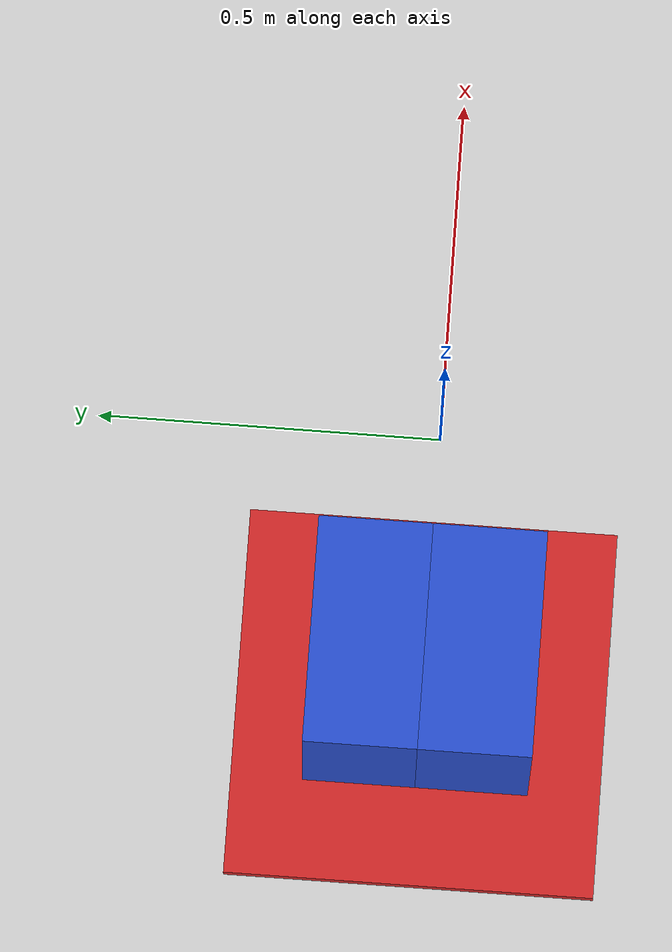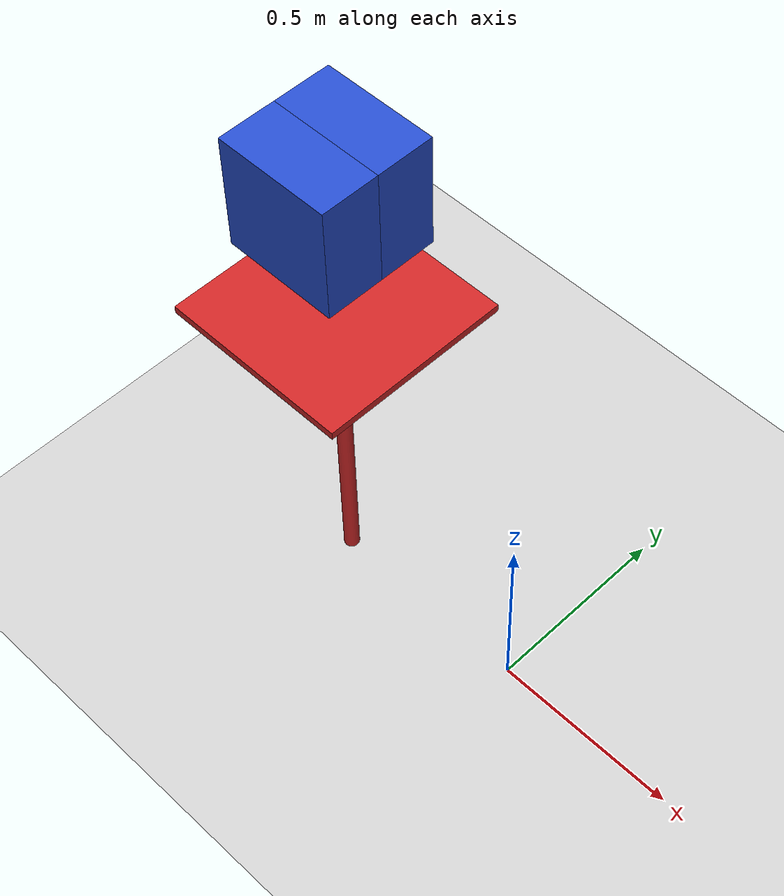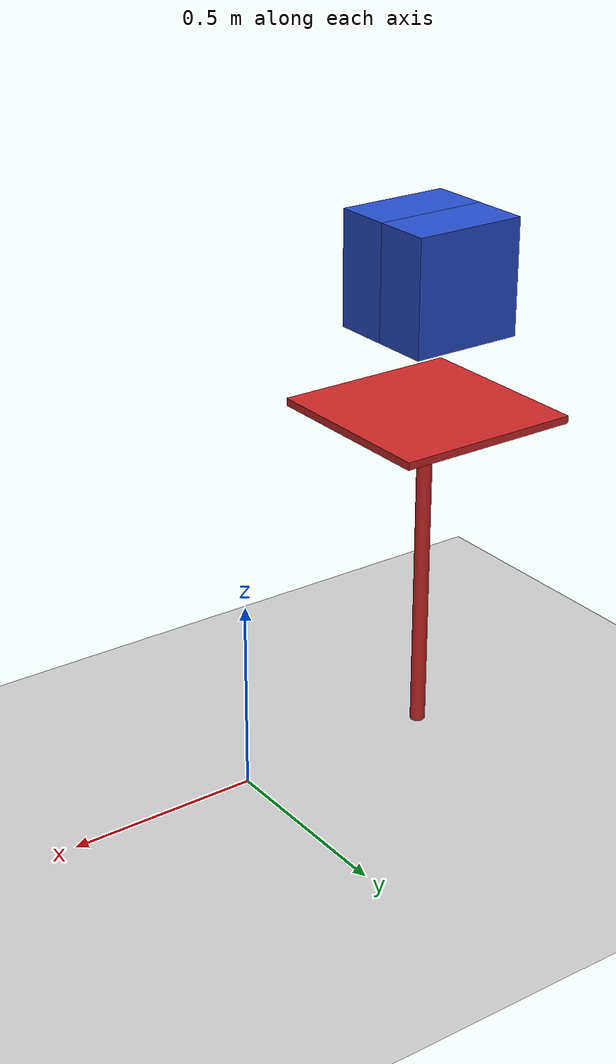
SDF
<?xml version="1.0"?>
<sdf version="1.5">
  <world name="default">
    <light name='sun' type='directional'>
      <cast_shadows>1</cast_shadows>
      <pose>0 0 10 0 -0 0</pose>
      <diffuse>0.8 0.8 0.8 1</diffuse>
      <specular>0.1 0.1 0.1 1</specular>
      <attenuation>
        <range>1000</range>
        <constant>0.9</constant>
        <linear>0.01</linear>
        <quadratic>0.001</quadratic>
      </attenuation>
      <direction>-0.5 0.5 -1</direction>
    </light>
    <model name='ground_plane'>
      <static>1</static>
      <link name='link'>
        <collision name='collision'>
          <geometry>
            <plane>
              <normal>0 0 1</normal>
              <size>100 100</size>
            </plane>
          </geometry>
          <surface>
            <friction>
              <ode>
                <mu>100</mu>
                <mu2>50</mu2>
              </ode>
            </friction>
            <contact>
              <ode/>
            </contact>
            <bounce/>
          </surface>
          <max_contacts>10</max_contacts>
        </collision>
        <visual name='visual'>
          <cast_shadows>0</cast_shadows>
          <geometry>
            <plane>
              <normal>0 0 1</normal>
              <size>100 100</size>
            </plane>
          </geometry>
          <material>
            <script>
              <uri>file://media/materials/scripts/gazebo.material</uri>
              <name>Gazebo/Grey</name>
            </script>
          </material>
        </visual>
        <velocity_decay>
          <linear>0</linear>
          <angular>0</angular>
        </velocity_decay>
        <self_collide>0</self_collide>
        <kinematic>0</kinematic>
        <gravity>1</gravity>
      </link>
    </model>
    <physics type='ode'>
      <max_step_size>0.001</max_step_size>
      <real_time_factor>1</real_time_factor>
      <real_time_update_rate>1000</real_time_update_rate>
      <gravity>0 0 -9.81</gravity>
    </physics>
    <scene>
      <ambient>0.4 0.4 0.4 1</ambient>
      <background>0.7 0.7 0.7 1</background>
      <shadows>1</shadows>
    </scene>

    <model name="Table">
      <pose>-0.55 0 0.89 0 0 0</pose>
      <static>true</static>

      <link name="boardLink">
	<pose>0 0 0 0 0 0 </pose>
        <collision name="boardCollision">
          <geometry>
            <box>
              <size>0.5 0.5 0.02</size>
            </box>
          </geometry>
          <surface>
            <friction>
              <ode>
                <mu>0.9</mu>
                <mu2>0.9</mu2>
              </ode>
            </friction>
            <contact>
              <ode/>
            </contact>
            <bounce/>
          </surface>
        </collision>
        <visual name="boardVisual">
          <geometry>
            <box>
              <size>0.5 0.5 0.02</size>
            </box>
          </geometry>
          <material>
            <script>
              <name>Gazebo/Red</name>
              <uri>file://media/materials/scripts/gazebo.material</uri>
            </script>
          </material>
        </visual>
      </link>

      <link name="pillarLink">
	<pose>0 0 -0.45 0 0 0 </pose>
        <collision name="pillarCollision">
          <geometry>
            <cylinder>
              <radius>0.02</radius>
              <length>0.9</length>
            </cylinder>
          </geometry>
          <surface>
            <friction>
              <ode>
                <mu>0</mu>
                <mu2>0</mu2>
              </ode>
            </friction>
            <contact>
              <ode/>
            </contact>
            <bounce/>
          </surface>
        </collision>
        <visual name="pillarVisual">
          <geometry>
            <cylinder>
              <radius>0.02</radius>
              <length>0.9</length>
            </cylinder>
          </geometry>
          <material>
            <script>
              <name>Gazebo/Red</name>
              <uri>file://media/materials/scripts/gazebo.material</uri>
            </script>
          </material>
        </visual>
      </link>
    </model>

    <model name="ObjectBox">
      <pose>-0.55 0 1.25 0 0 0</pose>
      <static>false</static>
      <link name="obLink">
        <inertial>
          <mass>1</mass>
          <inertia>
            <ixx>0.166667</ixx>
            <ixy>0</ixy>
            <ixz>0</ixz>
            <iyy>0.166667</iyy>
            <iyz>0</iyz>
            <izz>0.166667</izz>
          </inertia>
        </inertial>

        <collision name="obLeftCollision">
         <pose>0 0.075 0 0 0 0</pose>
          <geometry>
            <box>
              <size>0.3 0.15 0.3</size>
            </box>
          </geometry>
          <surface>
              <friction>
                <ode>
                  <mu>1.9</mu>
                  <mu2>1.9</mu2>
                </ode>
              </friction>
        </surface>
        </collision>
        <visual name="obLeftVisual">
         <pose>0 0.075 0 0 0 0</pose>
          <geometry>
            <box>
              <size>0.3 0.15 0.3</size>
            </box>
          </geometry>
          <material>
            <script>
              <name>Gazebo/Blue</name>
              <uri>file://media/materials/scripts/gazebo.material</uri>
            </script>
          </material>
        </visual>

        <collision name="obRightCollision">
         <pose>0 -0.075 0 0 0 0</pose>
          <geometry>
            <box>
              <size>0.3 0.15 0.3</size>
            </box>
          </geometry>
          <surface>
              <friction>
                <ode>
                  <mu>1.9</mu>
                  <mu2>1.9</mu2>
                </ode>
              </friction>
        </surface>
        </collision>
        <visual name="obRightVisual">
         <pose>0 -0.075 0 0 0 0</pose>
          <geometry>
            <box>
              <size>0.3 0.15 0.3</size>
            </box>
          </geometry>
          <material>
            <script>
              <name>Gazebo/Blue</name>
              <uri>file://media/materials/scripts/gazebo.material</uri>
            </script>
          </material>
        </visual>

        <sensor name='obLeftContact' type='contact'>
          <contact>
            <collision>obLeftCollision</collision>
          </contact>
	  <always_on>true</always_on>
	  <update_rate>1000</update_rate>
        </sensor>

        <sensor name='obRightContact' type='contact'>
          <contact>
            <collision>obRightCollision</collision>
          </contact>
	  <always_on>true</always_on>
	  <update_rate>1000</update_rate>
        </sensor>

      </link>
    </model>
    <gui fullscreen='0'>
      <camera name='user_camera'>
        <pose frame=''>-2.5 0.1 2.5 0 0.55 0.025</pose>
        <view_controller>orbit</view_controller>
        <projection_type>perspective</projection_type>
      </camera>
    </gui>
  </world>
</sdf>
